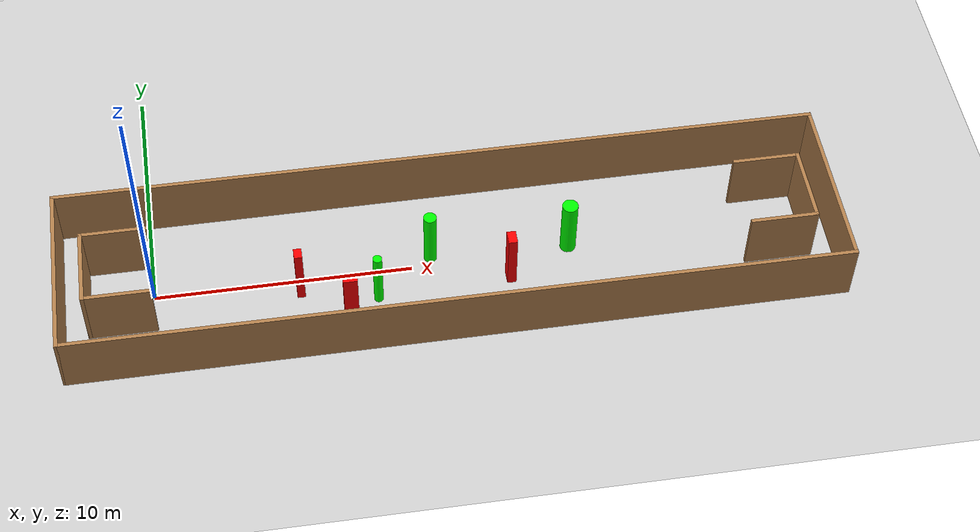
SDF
<sdf version="1.7">
 <world name="default">
  <light name="sun" type="directional">
   <pose>0 0 10 0 -0 0</pose>
   <diffuse>0.8 0.8 0.8 1</diffuse>
   <specular>0.2 0.2 0.2 1</specular>
   <attenuation>
    <range>1000</range>
    <constant>0.9</constant>
    <linear>0.01</linear>
    <quadratic>0.001</quadratic>
   </attenuation>
   <direction>-0.5 0.1 -0.9</direction>
   <spot><inner_angle>0</inner_angle><outer_angle>0</outer_angle><falloff>0</falloff></spot>
  </light>
  <model name="ground_plane">
   <static>1</static>
   <link name="link">
    <collision name="collision">
     <geometry><plane><normal>0 0 1</normal><size>100 100</size></plane></geometry>
     <surface>
      <contact><collide_bitmask>65535</collide_bitmask></contact>
      <friction><ode><mu>100</mu><mu2>50</mu2></ode></friction>
     </surface>
    </collision>
    <visual name="visual">
     <cast_shadows>0</cast_shadows>
     <geometry><plane><normal>0 0 1</normal><size>100 100</size></plane></geometry>
     <material>
      <script><uri>file://media/materials/scripts/gazebo.material</uri><name>Gazebo/Grey</name></script>
     </material>
    </visual>
   </link>
  </model>
  <gravity>0 0 -9.8</gravity>
  <magnetic_field>6e-06 2.3e-05 -4.2e-05</magnetic_field>
  <atmosphere type="adiabatic"/>
  <physics type="ode">
   <max_step_size>0.001</max_step_size>
   <real_time_factor>1</real_time_factor>
   <real_time_update_rate>1000</real_time_update_rate>
  </physics>
  <scene><ambient>0.4 0.4 0.4 1</ambient><background>0.7 0.7 0.7 1</background><shadows>1</shadows></scene>
  <spherical_coordinates>
   <surface_model>EARTH_WGS84</surface_model>
   <latitude_deg>0</latitude_deg>
   <longitude_deg>0</longitude_deg>
   <elevation>0</elevation>
   <heading_deg>0</heading_deg>
  </spherical_coordinates>
  <model name="my_base_walls">
   <link name="Wall_0">
    <collision name="Wall_0_Collision">
     <geometry><box><size>7.15 0.15 2.5</size></box></geometry>
     <pose>0 0 1.25 0 -0 0</pose>
    </collision>
    <visual name="Wall_0_Visual">
     <pose>0 0 1.25 0 -0 0</pose>
     <geometry><box><size>7.15 0.15 2.5</size></box></geometry>
     <material>
      <script><uri>file://media/materials/scripts/gazebo.material</uri><name>Gazebo/Wood</name></script>
      <ambient>1 1 1 1</ambient>
     </material>
     <meta><layer>0</layer></meta>
    </visual>
    <pose>-15 0 0 0 -0 1.5708</pose>
   </link>
   <link name="Wall_10">
    <collision name="Wall_10_Collision">
     <geometry><box><size>2.65 0.15 2.5</size></box></geometry>
     <pose>0 0 1.25 0 -0 0</pose>
    </collision>
    <visual name="Wall_10_Visual">
     <pose>0 0 1.25 0 -0 0</pose>
     <geometry><box><size>2.65 0.15 2.5</size></box></geometry>
     <material>
      <script><uri>file://media/materials/scripts/gazebo.material</uri><name>Gazebo/Wood</name></script>
      <ambient>1 1 1 1</ambient>
     </material>
     <meta><layer>0</layer></meta>
    </visual>
    <pose>-12.75 -1.5 0 0 -0 0</pose>
   </link>
   <link name="Wall_12">
    <collision name="Wall_12_Collision">
     <geometry><box><size>2.65 0.15 2.5</size></box></geometry>
     <pose>0 0 1.25 0 -0 0</pose>
    </collision>
    <visual name="Wall_12_Visual">
     <pose>0 0 1.25 0 -0 0</pose>
     <geometry><box><size>2.65 0.15 2.5</size></box></geometry>
     <material>
      <script><uri>file://media/materials/scripts/gazebo.material</uri><name>Gazebo/Wood</name></script>
      <ambient>1 1 1 1</ambient>
     </material>
     <meta><layer>0</layer></meta>
    </visual>
    <pose>-12.75 1.5 0 0 -0 0</pose>
   </link>
   <link name="Wall_14">
    <collision name="Wall_14_Collision">
     <geometry><box><size>3.15 0.15 2.5</size></box></geometry>
     <pose>0 0 1.25 0 -0 0</pose>
    </collision>
    <visual name="Wall_14_Visual">
     <pose>0 0 1.25 0 -0 0</pose>
     <geometry><box><size>3.15 0.15 2.5</size></box></geometry>
     <material>
      <script><uri>file://media/materials/scripts/gazebo.material</uri><name>Gazebo/Wood</name></script>
      <ambient>1 1 1 1</ambient>
     </material>
     <meta><layer>0</layer></meta>
    </visual>
    <pose>14 0 0 0 -0 -1.5708</pose>
   </link>
   <link name="Wall_15">
    <collision name="Wall_15_Collision">
     <geometry><box><size>2.65 0.15 2.5</size></box></geometry>
     <pose>0 0 1.25 0 -0 0</pose>
    </collision>
    <visual name="Wall_15_Visual">
     <pose>0 0 1.25 0 -0 0</pose>
     <geometry><box><size>2.65 0.15 2.5</size></box></geometry>
     <material>
      <script><uri>file://media/materials/scripts/gazebo.material</uri><name>Gazebo/Wood</name></script>
      <ambient>1 1 1 1</ambient>
     </material>
     <meta><layer>0</layer></meta>
    </visual>
    <pose>12.75 -1.5 0 0 -0 3.14159</pose>
   </link>
   <link name="Wall_17">
    <collision name="Wall_17_Collision">
     <geometry><box><size>2.65 0.15 2.5</size></box></geometry>
     <pose>0 0 1.25 0 -0 0</pose>
    </collision>
    <visual name="Wall_17_Visual">
     <pose>0 0 1.25 0 -0 0</pose>
     <geometry><box><size>2.65 0.15 2.5</size></box></geometry>
     <material>
      <script><uri>file://media/materials/scripts/gazebo.material</uri><name>Gazebo/Wood</name></script>
      <ambient>1 1 1 1</ambient>
     </material>
     <meta><layer>0</layer></meta>
    </visual>
    <pose>12.75 1.5 0 0 -0 3.14159</pose>
   </link>
   <link name="Wall_2">
    <collision name="Wall_2_Collision">
     <geometry><box><size>30.15 0.15 2.5</size></box></geometry>
     <pose>0 0 1.25 0 -0 0</pose>
    </collision>
    <visual name="Wall_2_Visual">
     <pose>0 0 1.25 0 -0 0</pose>
     <geometry><box><size>30.15 0.15 2.5</size></box></geometry>
     <material>
      <script><uri>file://media/materials/scripts/gazebo.material</uri><name>Gazebo/Wood</name></script>
      <ambient>1 1 1 1</ambient>
     </material>
     <meta><layer>0</layer></meta>
    </visual>
    <pose>-0 -3.5 0 0 -0 0</pose>
   </link>
   <link name="Wall_4">
    <collision name="Wall_4_Collision">
     <geometry><box><size>30.15 0.15 2.5</size></box></geometry>
     <pose>0 0 1.25 0 -0 0</pose>
    </collision>
    <visual name="Wall_4_Visual">
     <pose>0 0 1.25 0 -0 0</pose>
     <geometry><box><size>30.15 0.15 2.5</size></box></geometry>
     <material>
      <script><uri>file://media/materials/scripts/gazebo.material</uri><name>Gazebo/Wood</name></script>
      <ambient>1 1 1 1</ambient>
     </material>
     <meta><layer>0</layer></meta>
    </visual>
    <pose>-0 3.5 0 0 -0 0</pose>
   </link>
   <link name="Wall_6">
    <collision name="Wall_6_Collision">
     <geometry><box><size>7.15 0.15 2.5</size></box></geometry>
     <pose>0 0 1.25 0 -0 0</pose>
    </collision>
    <visual name="Wall_6_Visual">
     <pose>0 0 1.25 0 -0 0</pose>
     <geometry><box><size>7.15 0.15 2.5</size></box></geometry>
     <material>
      <script><uri>file://media/materials/scripts/gazebo.material</uri><name>Gazebo/Wood</name></script>
      <ambient>1 1 1 1</ambient>
     </material>
     <meta><layer>0</layer></meta>
    </visual>
    <pose>15 0 0 0 -0 -1.5708</pose>
   </link>
   <link name="Wall_9">
    <collision name="Wall_9_Collision">
     <geometry><box><size>3.15 0.15 2.5</size></box></geometry>
     <pose>0 0 1.25 0 -0 0</pose>
    </collision>
    <visual name="Wall_9_Visual">
     <pose>0 0 1.25 0 -0 0</pose>
     <geometry><box><size>3.15 0.15 2.5</size></box></geometry>
     <material>
      <script><uri>file://media/materials/scripts/gazebo.material</uri><name>Gazebo/Wood</name></script>
      <ambient>1 1 1 1</ambient>
     </material>
     <meta><layer>0</layer></meta>
    </visual>
    <pose>-14 0 0 0 -0 -1.5708</pose>
   </link>
   <static>1</static>
   <pose>11.5 0 0 0 -0 0</pose>
  </model>
  <model name="cylinder1">
   <static>1</static>
   <link name="link">
    <inertial>
     <mass>1</mass>
     <inertia><ixx>0.5</ixx><ixy>0</ixy><ixz>0</ixz><iyy>0.5</iyy><iyz>0</iyz><izz>1</izz></inertia>
    </inertial>
    <collision name="collision">
     <geometry><cylinder><radius>0.2525341825604494</radius><length>2.5</length></cylinder></geometry>
    </collision>
    <visual name="visual">
     <geometry><cylinder><radius>0.2525341825604494</radius><length>2.5</length></cylinder></geometry>
     <material>
      <ambient>0 1 0 1</ambient>
      <diffuse>0 1 0 1</diffuse>
      <specular>0.1 0.1 0.1 1</specular>
      <emissive>0 0 0 0</emissive>
     </material>
    </visual>
   </link>
   <pose>10.79456613948017 0.4236920141133744 1.25 0 0 0</pose>
  </model>
  <model name="cylinder2">
   <static>1</static>
   <link name="link">
    <inertial>
     <mass>1</mass>
     <inertia><ixx>0.5</ixx><ixy>0</ixy><ixz>0</ixz><iyy>0.5</iyy><iyz>0</iyz><izz>1</izz></inertia>
    </inertial>
    <collision name="collision">
     <geometry><cylinder><radius>0.1779903724714808</radius><length>2.5</length></cylinder></geometry>
    </collision>
    <visual name="visual">
     <geometry><cylinder><radius>0.1779903724714808</radius><length>2.5</length></cylinder></geometry>
     <material>
      <ambient>0 1 0 1</ambient>
      <diffuse>0 1 0 1</diffuse>
      <specular>0.1 0.1 0.1 1</specular>
      <emissive>0 0 0 0</emissive>
     </material>
    </visual>
   </link>
   <pose>8.559666873495129 -1.2612725839577816 1.25 0 0 0</pose>
  </model>
  <model name="cylinder3">
   <static>1</static>
   <link name="link">
    <inertial>
     <mass>1</mass>
     <inertia><ixx>0.5</ixx><ixy>0</ixy><ixz>0</ixz><iyy>0.5</iyy><iyz>0</iyz><izz>1</izz></inertia>
    </inertial>
    <collision name="collision">
     <geometry><cylinder><radius>0.3096431160784274</radius><length>2.5</length></cylinder></geometry>
    </collision>
    <visual name="visual">
     <geometry><cylinder><radius>0.3096431160784274</radius><length>2.5</length></cylinder></geometry>
     <material>
      <ambient>0 1 0 1</ambient>
      <diffuse>0 1 0 1</diffuse>
      <specular>0.1 0.1 0.1 1</specular>
      <emissive>0 0 0 0</emissive>
     </material>
    </visual>
   </link>
   <pose>16.21672336791398 0.2180407110904068 1.25 0 0 0</pose>
  </model>
  <model name="box1">
   <static>1</static>
   <link name="link">
    <inertial>
     <mass>1</mass>
     <inertia><ixx>0.083</ixx><ixy>0</ixy><ixz>0</ixz><iyy>0.083</iyy><iyz>0</iyz><izz>0.083</izz></inertia>
    </inertial>
    <collision name="collision">
     <geometry><box><size>0.34734589482730904 0.5442850093773055 2.5</size></box></geometry>
    </collision>
    <visual name="visual">
     <geometry><box><size>0.34734589482730904 0.5442850093773055 2.5</size></box></geometry>
     <material>
      <ambient>1 0 0 1</ambient>
      <diffuse>1 0 0 1</diffuse>
      <specular>0.1 0.1 0.1 1</specular>
      <emissive>0 0 0 0</emissive>
     </material>
    </visual>
    <sensor name="my_contact" type="contact">
     <contact><collision>box_collision</collision><topic>__default_topic__</topic></contact>
    </sensor>
   </link>
   <pose>13.755947354852939 -0.9608825146586009 1.25 0 0 0</pose>
  </model>
  <model name="box2">
   <static>1</static>
   <link name="link">
    <inertial>
     <mass>1</mass>
     <inertia><ixx>0.083</ixx><ixy>0</ixy><ixz>0</ixz><iyy>0.083</iyy><iyz>0</iyz><izz>0.083</izz></inertia>
    </inertial>
    <collision name="collision">
     <geometry><box><size>0.3117148175728465 0.4338011311610483 2.5</size></box></geometry>
    </collision>
    <visual name="visual">
     <geometry><box><size>0.3117148175728465 0.4338011311610483 2.5</size></box></geometry>
     <material>
      <ambient>1 0 0 1</ambient>
      <diffuse>1 0 0 1</diffuse>
      <specular>0.1 0.1 0.1 1</specular>
      <emissive>0 0 0 0</emissive>
     </material>
    </visual>
    <sensor name="my_contact" type="contact">
     <contact><collision>box_collision</collision><topic>__default_topic__</topic></contact>
    </sensor>
   </link>
   <pose>5.6181841032510125 -0.5687454466937019 1.25 0 0 0</pose>
  </model>
  <model name="box3">
   <static>1</static>
   <link name="link">
    <inertial>
     <mass>1</mass>
     <inertia><ixx>0.083</ixx><ixy>0</ixy><ixz>0</ixz><iyy>0.083</iyy><iyz>0</iyz><izz>0.083</izz></inertia>
    </inertial>
    <collision name="collision">
     <geometry><box><size>0.5500637257627334 0.26696141215336133 2.5</size></box></geometry>
    </collision>
    <visual name="visual">
     <geometry><box><size>0.5500637257627334 0.26696141215336133 2.5</size></box></geometry>
     <material>
      <ambient>1 0 0 1</ambient>
      <diffuse>1 0 0 1</diffuse>
      <specular>0.1 0.1 0.1 1</specular>
      <emissive>0 0 0 0</emissive>
     </material>
    </visual>
    <sensor name="my_contact" type="contact">
     <contact><collision>box_collision</collision><topic>__default_topic__</topic></contact>
    </sensor>
   </link>
   <pose>7.439212503404853 -2.0545321558815655 1.25 0 0 0</pose>
  </model>
 </world>
</sdf>
